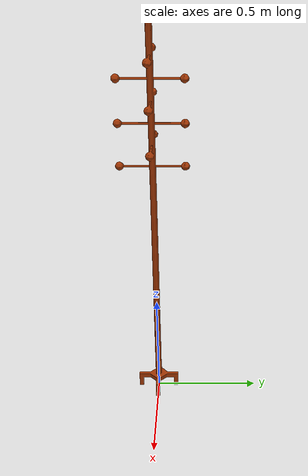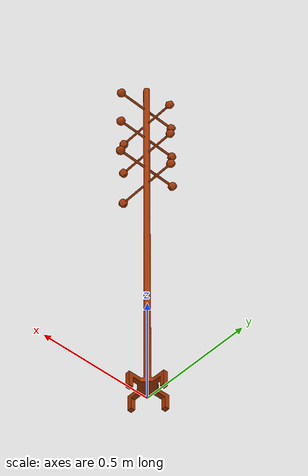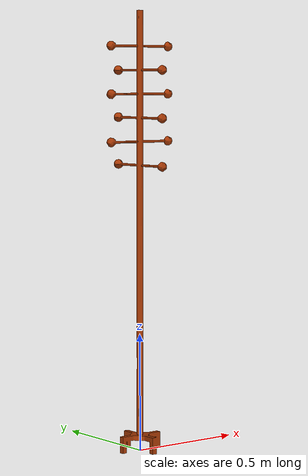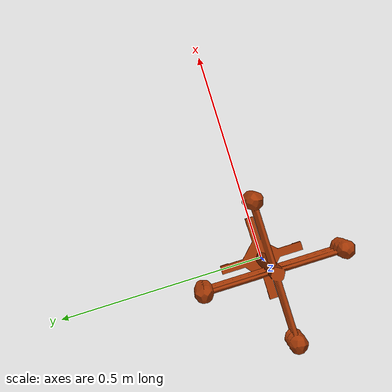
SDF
<?xml version="1.0" ?>
<sdf version="1.5">
  <model name="rack_coat">
    <link name="link">
      <pose>0 0 0 0 0 0</pose>
      <collision name="collision">
        <geometry>
          <mesh>
            <uri>model://rack_coat/meshes/model.dae</uri>
          </mesh>
        </geometry>
      </collision>
      <visual name="visual">
        <geometry>
          <mesh>
            <uri>model://rack_coat/meshes/model.dae</uri>
          </mesh>
        </geometry>
      </visual>
    </link>
    <static>1</static>
  </model>
</sdf>
